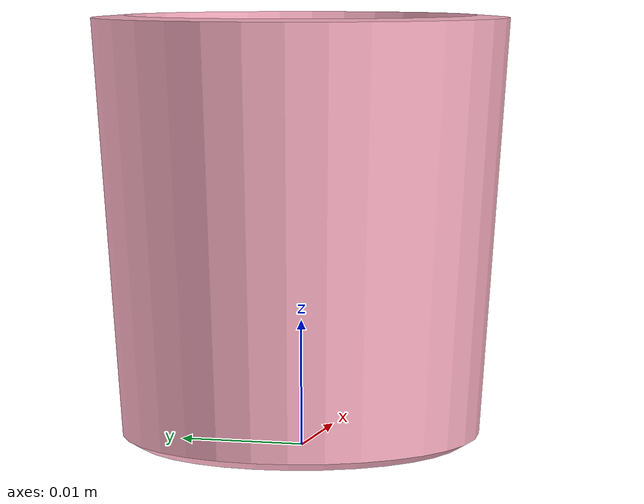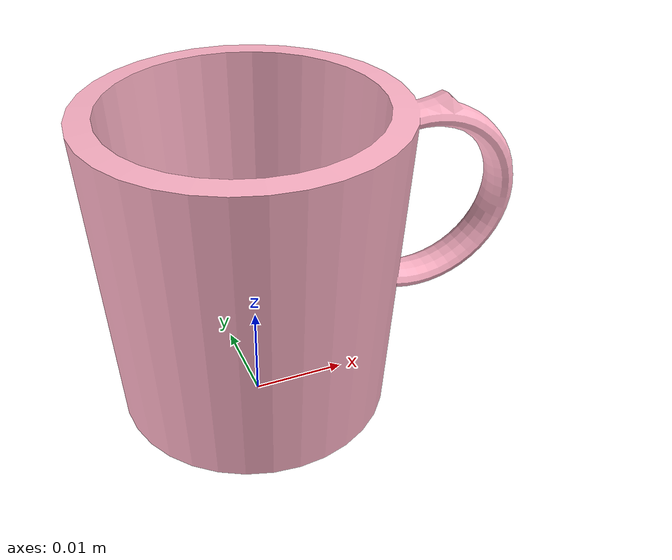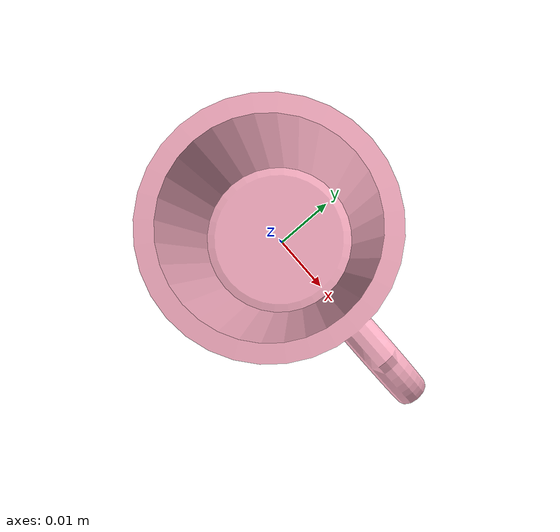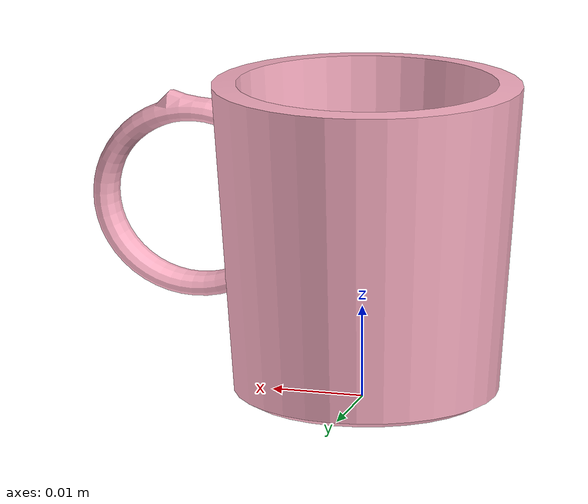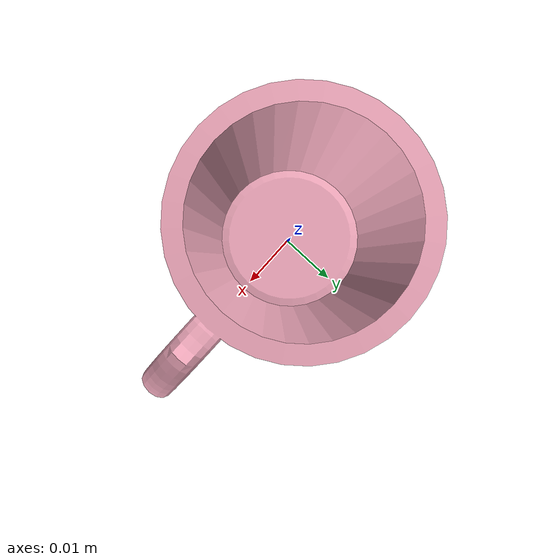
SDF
<?xml version="1.0" ?>
<sdf version='1.4'>
  <model name="custom_mug_pink_01">
      <static>0</static>
      <link name='link'>
        <inertial>
          <mass>0.0189132</mass>
          <inertia>
            <ixx>3.36060179959e-06</ixx>
            <ixy>0.000000</ixy>
            <ixz>0.000000</ixz>
            <iyy>3.36060179959e-06</iyy>
            <iyz>0.000000</iyz>
            <izz>1.34975977923e-06</izz>
          </inertia>
        </inertial>
        <collision name='collision'>
          <geometry>
            <mesh>
              <uri>model://custom_mug_pink_01/meshes/Mug.stl</uri>
              <scale>0.05 0.05 0.05</scale>
            </mesh>
          </geometry>
          <surface>
            <friction>
              <ode>
                <mu>30.0</mu>
                <mu2>30.0</mu2>
              </ode>
            </friction>
          </surface>
        </collision>
        <visual name='visual'>
          <geometry>
            <mesh>
              <uri>model://custom_mug_pink_01/meshes/Mug.dae</uri>
              <scale>0.05 0.05 0.05</scale>
            </mesh>
          </geometry>
        </visual>
        <velocity_decay>
          <linear>0.000000</linear>
          <angular>0.000000</angular>
        </velocity_decay>
        <self_collide>0</self_collide>
        <kinematic>0</kinematic>
        <gravity>1</gravity>
      </link>
  </model>
</sdf>
